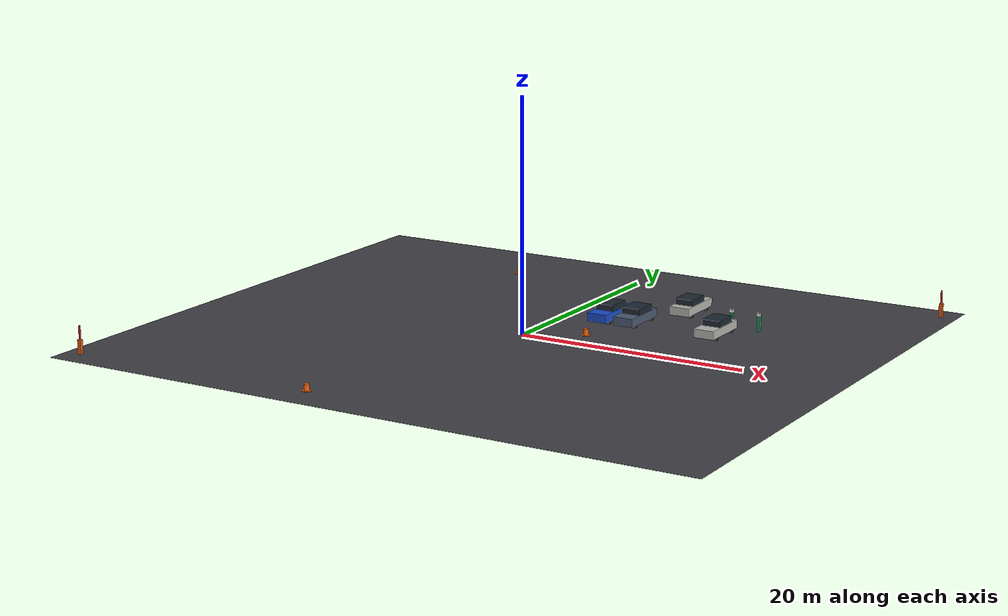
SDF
<sdf version="1.10">
 <world name="parking_lot">
  <model name="ground">
   <static>true</static>
   <link name="link">
    <collision name="c">
     <geometry><plane><normal>0 0 1</normal><size>78.0 70.1</size></plane></geometry>
     <surface><friction><ode><mu>1.0</mu><mu2>1.0</mu2></ode></friction></surface>
    </collision>
    <visual name="floor_vis">
     <pose>0.0000 0.0000 -0.0100 0 0 0.000000</pose>
     <geometry><box><size>58.0000 50.1000 0.0200</size></box></geometry>
     <material>
      <ambient>0.22 0.22 0.24 1</ambient>
      <diffuse>0.26 0.26 0.28 1</diffuse>
      <specular>0.1 0.1 0.1 1</specular>
     </material>
    </visual>
   </link>
  </model>
  <model name="gates">
   <static>true</static>
   <link name="link">
    <collision name="gpost_in_col">
     <pose>-27.6000 -23.0500 0.6000 0 0 0.000000</pose>
     <geometry><box><size>0.3000 0.3000 1.2000</size></box></geometry>
    </collision>
    <visual name="gpost_in_vis">
     <pose>-27.6000 -23.0500 0.6000 0 0 0.000000</pose>
     <geometry><box><size>0.3000 0.3000 1.2000</size></box></geometry>
     <material>
      <ambient>0.60 0.20 0.05 1</ambient>
      <diffuse>0.90 0.35 0.08 1</diffuse>
      <specular>0.1 0.1 0.1 1</specular>
     </material>
    </visual>
    <visual name="gbar_in_vis">
     <pose>-27.6000 -23.0500 1.8000 0 0 0.000000</pose>
     <geometry><box><size>0.1200 0.1200 1.1000</size></box></geometry>
     <material>
      <ambient>0.55 0.08 0.06 1</ambient>
      <diffuse>0.80 0.14 0.10 1</diffuse>
      <specular>0.1 0.1 0.1 1</specular>
     </material>
    </visual>
    <collision name="gpost_out_col">
     <pose>27.6000 23.0500 0.6000 0 0 0.000000</pose>
     <geometry><box><size>0.3000 0.3000 1.2000</size></box></geometry>
    </collision>
    <visual name="gpost_out_vis">
     <pose>27.6000 23.0500 0.6000 0 0 0.000000</pose>
     <geometry><box><size>0.3000 0.3000 1.2000</size></box></geometry>
     <material>
      <ambient>0.60 0.20 0.05 1</ambient>
      <diffuse>0.90 0.35 0.08 1</diffuse>
      <specular>0.1 0.1 0.1 1</specular>
     </material>
    </visual>
    <visual name="gbar_out_vis">
     <pose>27.6000 23.0500 1.8000 0 0 0.000000</pose>
     <geometry><box><size>0.1200 0.1200 1.1000</size></box></geometry>
     <material>
      <ambient>0.55 0.08 0.06 1</ambient>
      <diffuse>0.80 0.14 0.10 1</diffuse>
      <specular>0.1 0.1 0.1 1</specular>
     </material>
    </visual>
   </link>
  </model>
  <model name="ev_chargers">
   <static>true</static>
   <link name="link">
    <collision name="chg_D13_col">
     <pose>13.7500 11.0000 0.6500 0 0 0.000000</pose>
     <geometry><box><size>0.2800 0.2800 1.3000</size></box></geometry>
    </collision>
    <visual name="chg_D13_vis">
     <pose>13.7500 11.0000 0.6500 0 0 0.000000</pose>
     <geometry><box><size>0.2800 0.2800 1.3000</size></box></geometry>
     <material>
      <ambient>0.10 0.30 0.20 1</ambient>
      <diffuse>0.15 0.55 0.35 1</diffuse>
      <specular>0.1 0.1 0.1 1</specular>
     </material>
    </visual>
    <visual name="chgtop_D13_vis">
     <pose>13.7500 11.0000 1.4200 0 0 0.000000</pose>
     <geometry><box><size>0.3600 0.2200 0.2400</size></box></geometry>
     <material>
      <ambient>0.85 0.85 0.85 1</ambient>
      <diffuse>0.95 0.95 0.95 1</diffuse>
      <specular>0.1 0.1 0.1 1</specular>
     </material>
    </visual>
    <collision name="chg_D14_col">
     <pose>16.2500 11.0000 0.6500 0 0 0.000000</pose>
     <geometry><box><size>0.2800 0.2800 1.3000</size></box></geometry>
    </collision>
    <visual name="chg_D14_vis">
     <pose>16.2500 11.0000 0.6500 0 0 0.000000</pose>
     <geometry><box><size>0.2800 0.2800 1.3000</size></box></geometry>
     <material>
      <ambient>0.10 0.30 0.20 1</ambient>
      <diffuse>0.15 0.55 0.35 1</diffuse>
      <specular>0.1 0.1 0.1 1</specular>
     </material>
    </visual>
    <visual name="chgtop_D14_vis">
     <pose>16.2500 11.0000 1.4200 0 0 0.000000</pose>
     <geometry><box><size>0.3600 0.2200 0.2400</size></box></geometry>
     <material>
      <ambient>0.85 0.85 0.85 1</ambient>
      <diffuse>0.95 0.95 0.95 1</diffuse>
      <specular>0.1 0.1 0.1 1</specular>
     </material>
    </visual>
   </link>
  </model>
  <model name="cone_00">
   <static>true</static>
   <link name="link">
    <collision name="cone_col">
     <pose>-6.0000 -22.0500 0.2750 0 0 0</pose>
     <geometry><cylinder><radius>0.2200</radius><length>0.5500</length></cylinder></geometry>
    </collision>
    <visual name="cone_vis">
     <pose>-6.0000 -22.0500 0.2750 0 0 0</pose>
     <geometry><cylinder><radius>0.2200</radius><length>0.5500</length></cylinder></geometry>
     <material>
      <ambient>0.60 0.22 0.03 1</ambient>
      <diffuse>0.95 0.38 0.05 1</diffuse>
      <specular>0.1 0.1 0.1 1</specular>
     </material>
    </visual>
    <collision name="base_col">
     <pose>-6.0000 -22.0500 0.0200 0 0 0</pose>
     <geometry><cylinder><radius>0.3740</radius><length>0.0400</length></cylinder></geometry>
    </collision>
    <visual name="base_vis">
     <pose>-6.0000 -22.0500 0.0200 0 0 0</pose>
     <geometry><cylinder><radius>0.3740</radius><length>0.0400</length></cylinder></geometry>
     <material>
      <ambient>0.60 0.22 0.03 1</ambient>
      <diffuse>0.95 0.38 0.05 1</diffuse>
      <specular>0.1 0.1 0.1 1</specular>
     </material>
    </visual>
   </link>
  </model>
  <model name="cone_01">
   <static>true</static>
   <link name="link">
    <collision name="cone_col">
     <pose>4.5000 2.6000 0.2750 0 0 0</pose>
     <geometry><cylinder><radius>0.2200</radius><length>0.5500</length></cylinder></geometry>
    </collision>
    <visual name="cone_vis">
     <pose>4.5000 2.6000 0.2750 0 0 0</pose>
     <geometry><cylinder><radius>0.2200</radius><length>0.5500</length></cylinder></geometry>
     <material>
      <ambient>0.60 0.22 0.03 1</ambient>
      <diffuse>0.95 0.38 0.05 1</diffuse>
      <specular>0.1 0.1 0.1 1</specular>
     </material>
    </visual>
    <collision name="base_col">
     <pose>4.5000 2.6000 0.0200 0 0 0</pose>
     <geometry><cylinder><radius>0.3740</radius><length>0.0400</length></cylinder></geometry>
    </collision>
    <visual name="base_vis">
     <pose>4.5000 2.6000 0.0200 0 0 0</pose>
     <geometry><cylinder><radius>0.3740</radius><length>0.0400</length></cylinder></geometry>
     <material>
      <ambient>0.60 0.22 0.03 1</ambient>
      <diffuse>0.95 0.38 0.05 1</diffuse>
      <specular>0.1 0.1 0.1 1</specular>
     </material>
    </visual>
   </link>
  </model>
  <model name="cone_02">
   <static>true</static>
   <link name="link">
    <collision name="cone_col">
     <pose>-11.0000 17.8500 0.2750 0 0 0</pose>
     <geometry><cylinder><radius>0.2200</radius><length>0.5500</length></cylinder></geometry>
    </collision>
    <visual name="cone_vis">
     <pose>-11.0000 17.8500 0.2750 0 0 0</pose>
     <geometry><cylinder><radius>0.2200</radius><length>0.5500</length></cylinder></geometry>
     <material>
      <ambient>0.60 0.22 0.03 1</ambient>
      <diffuse>0.95 0.38 0.05 1</diffuse>
      <specular>0.1 0.1 0.1 1</specular>
     </material>
    </visual>
    <collision name="base_col">
     <pose>-11.0000 17.8500 0.0200 0 0 0</pose>
     <geometry><cylinder><radius>0.3740</radius><length>0.0400</length></cylinder></geometry>
    </collision>
    <visual name="base_vis">
     <pose>-11.0000 17.8500 0.0200 0 0 0</pose>
     <geometry><cylinder><radius>0.3740</radius><length>0.0400</length></cylinder></geometry>
     <material>
      <ambient>0.60 0.22 0.03 1</ambient>
      <diffuse>0.95 0.38 0.05 1</diffuse>
      <specular>0.1 0.1 0.1 1</specular>
     </material>
    </visual>
   </link>
  </model>
  <model name="parked_car_C09">
   <static>true</static>
   <pose>3.7500 7.9500 0 0 0 -1.570796</pose>
   <link name="link">
    <collision name="body_col">
     <pose>0.0000 0.0000 0.6300 0 0 0.000000</pose>
     <geometry><box><size>4.4000 1.8000 0.7200</size></box></geometry>
    </collision>
    <visual name="body_vis">
     <pose>0.0000 0.0000 0.6300 0 0 0.000000</pose>
     <geometry><box><size>4.4000 1.8000 0.7200</size></box></geometry>
     <material>
      <ambient>0.06 0.18 0.55 1</ambient>
      <diffuse>0.10 0.30 0.80 1</diffuse>
      <specular>0.1 0.1 0.1 1</specular>
     </material>
    </visual>
    <collision name="cabin_col">
     <pose>-0.2500 0.0000 1.2500 0 0 0.000000</pose>
     <geometry><box><size>2.2000 1.6560 0.5200</size></box></geometry>
    </collision>
    <visual name="cabin_vis">
     <pose>-0.2500 0.0000 1.2500 0 0 0.000000</pose>
     <geometry><box><size>2.2000 1.6560 0.5200</size></box></geometry>
     <material>
      <ambient>0.06 0.08 0.10 1</ambient>
      <diffuse>0.12 0.16 0.20 1</diffuse>
      <specular>0.1 0.1 0.1 1</specular>
     </material>
    </visual>
    <collision name="w_fl_col">
     <pose>1.4080 0.7560 0.3300 1.5708 0 0</pose>
     <geometry><cylinder><radius>0.3300</radius><length>0.2200</length></cylinder></geometry>
    </collision>
    <visual name="w_fl_vis">
     <pose>1.4080 0.7560 0.3300 1.5708 0 0</pose>
     <geometry><cylinder><radius>0.3300</radius><length>0.2200</length></cylinder></geometry>
     <material>
      <ambient>0.03 0.03 0.03 1</ambient>
      <diffuse>0.08 0.08 0.08 1</diffuse>
      <specular>0.1 0.1 0.1 1</specular>
     </material>
    </visual>
    <collision name="w_fr_col">
     <pose>1.4080 -0.7560 0.3300 1.5708 0 0</pose>
     <geometry><cylinder><radius>0.3300</radius><length>0.2200</length></cylinder></geometry>
    </collision>
    <visual name="w_fr_vis">
     <pose>1.4080 -0.7560 0.3300 1.5708 0 0</pose>
     <geometry><cylinder><radius>0.3300</radius><length>0.2200</length></cylinder></geometry>
     <material>
      <ambient>0.03 0.03 0.03 1</ambient>
      <diffuse>0.08 0.08 0.08 1</diffuse>
      <specular>0.1 0.1 0.1 1</specular>
     </material>
    </visual>
    <collision name="w_rl_col">
     <pose>-1.4080 0.7560 0.3300 1.5708 0 0</pose>
     <geometry><cylinder><radius>0.3300</radius><length>0.2200</length></cylinder></geometry>
    </collision>
    <visual name="w_rl_vis">
     <pose>-1.4080 0.7560 0.3300 1.5708 0 0</pose>
     <geometry><cylinder><radius>0.3300</radius><length>0.2200</length></cylinder></geometry>
     <material>
      <ambient>0.03 0.03 0.03 1</ambient>
      <diffuse>0.08 0.08 0.08 1</diffuse>
      <specular>0.1 0.1 0.1 1</specular>
     </material>
    </visual>
    <collision name="w_rr_col">
     <pose>-1.4080 -0.7560 0.3300 1.5708 0 0</pose>
     <geometry><cylinder><radius>0.3300</radius><length>0.2200</length></cylinder></geometry>
    </collision>
    <visual name="w_rr_vis">
     <pose>-1.4080 -0.7560 0.3300 1.5708 0 0</pose>
     <geometry><cylinder><radius>0.3300</radius><length>0.2200</length></cylinder></geometry>
     <material>
      <ambient>0.03 0.03 0.03 1</ambient>
      <diffuse>0.08 0.08 0.08 1</diffuse>
      <specular>0.1 0.1 0.1 1</specular>
     </material>
    </visual>
   </link>
  </model>
  <model name="parked_car_C10">
   <static>true</static>
   <pose>6.2500 7.9500 0 0 0 -1.570796</pose>
   <link name="link">
    <collision name="body_col">
     <pose>0.0000 0.0000 0.6300 0 0 0.000000</pose>
     <geometry><box><size>4.4000 1.8000 0.7200</size></box></geometry>
    </collision>
    <visual name="body_vis">
     <pose>0.0000 0.0000 0.6300 0 0 0.000000</pose>
     <geometry><box><size>4.4000 1.8000 0.7200</size></box></geometry>
     <material>
      <ambient>0.10 0.12 0.16 1</ambient>
      <diffuse>0.30 0.36 0.46 1</diffuse>
      <specular>0.1 0.1 0.1 1</specular>
     </material>
    </visual>
    <collision name="cabin_col">
     <pose>-0.2500 0.0000 1.2500 0 0 0.000000</pose>
     <geometry><box><size>2.2000 1.6560 0.5200</size></box></geometry>
    </collision>
    <visual name="cabin_vis">
     <pose>-0.2500 0.0000 1.2500 0 0 0.000000</pose>
     <geometry><box><size>2.2000 1.6560 0.5200</size></box></geometry>
     <material>
      <ambient>0.06 0.08 0.10 1</ambient>
      <diffuse>0.12 0.16 0.20 1</diffuse>
      <specular>0.1 0.1 0.1 1</specular>
     </material>
    </visual>
    <collision name="w_fl_col">
     <pose>1.4080 0.7560 0.3300 1.5708 0 0</pose>
     <geometry><cylinder><radius>0.3300</radius><length>0.2200</length></cylinder></geometry>
    </collision>
    <visual name="w_fl_vis">
     <pose>1.4080 0.7560 0.3300 1.5708 0 0</pose>
     <geometry><cylinder><radius>0.3300</radius><length>0.2200</length></cylinder></geometry>
     <material>
      <ambient>0.03 0.03 0.03 1</ambient>
      <diffuse>0.08 0.08 0.08 1</diffuse>
      <specular>0.1 0.1 0.1 1</specular>
     </material>
    </visual>
    <collision name="w_fr_col">
     <pose>1.4080 -0.7560 0.3300 1.5708 0 0</pose>
     <geometry><cylinder><radius>0.3300</radius><length>0.2200</length></cylinder></geometry>
    </collision>
    <visual name="w_fr_vis">
     <pose>1.4080 -0.7560 0.3300 1.5708 0 0</pose>
     <geometry><cylinder><radius>0.3300</radius><length>0.2200</length></cylinder></geometry>
     <material>
      <ambient>0.03 0.03 0.03 1</ambient>
      <diffuse>0.08 0.08 0.08 1</diffuse>
      <specular>0.1 0.1 0.1 1</specular>
     </material>
    </visual>
    <collision name="w_rl_col">
     <pose>-1.4080 0.7560 0.3300 1.5708 0 0</pose>
     <geometry><cylinder><radius>0.3300</radius><length>0.2200</length></cylinder></geometry>
    </collision>
    <visual name="w_rl_vis">
     <pose>-1.4080 0.7560 0.3300 1.5708 0 0</pose>
     <geometry><cylinder><radius>0.3300</radius><length>0.2200</length></cylinder></geometry>
     <material>
      <ambient>0.03 0.03 0.03 1</ambient>
      <diffuse>0.08 0.08 0.08 1</diffuse>
      <specular>0.1 0.1 0.1 1</specular>
     </material>
    </visual>
    <collision name="w_rr_col">
     <pose>-1.4080 -0.7560 0.3300 1.5708 0 0</pose>
     <geometry><cylinder><radius>0.3300</radius><length>0.2200</length></cylinder></geometry>
    </collision>
    <visual name="w_rr_vis">
     <pose>-1.4080 -0.7560 0.3300 1.5708 0 0</pose>
     <geometry><cylinder><radius>0.3300</radius><length>0.2200</length></cylinder></geometry>
     <material>
      <ambient>0.03 0.03 0.03 1</ambient>
      <diffuse>0.08 0.08 0.08 1</diffuse>
      <specular>0.1 0.1 0.1 1</specular>
     </material>
    </visual>
   </link>
  </model>
  <model name="parked_car_C13">
   <static>true</static>
   <pose>13.7500 7.9500 0 0 0 -1.570796</pose>
   <link name="link">
    <collision name="body_col">
     <pose>0.0000 0.0000 0.6300 0 0 0.000000</pose>
     <geometry><box><size>4.4000 1.8000 0.7200</size></box></geometry>
    </collision>
    <visual name="body_vis">
     <pose>0.0000 0.0000 0.6300 0 0 0.000000</pose>
     <geometry><box><size>4.4000 1.8000 0.7200</size></box></geometry>
     <material>
      <ambient>0.55 0.55 0.53 1</ambient>
      <diffuse>0.72 0.72 0.70 1</diffuse>
      <specular>0.1 0.1 0.1 1</specular>
     </material>
    </visual>
    <collision name="cabin_col">
     <pose>-0.2500 0.0000 1.2500 0 0 0.000000</pose>
     <geometry><box><size>2.2000 1.6560 0.5200</size></box></geometry>
    </collision>
    <visual name="cabin_vis">
     <pose>-0.2500 0.0000 1.2500 0 0 0.000000</pose>
     <geometry><box><size>2.2000 1.6560 0.5200</size></box></geometry>
     <material>
      <ambient>0.06 0.08 0.10 1</ambient>
      <diffuse>0.12 0.16 0.20 1</diffuse>
      <specular>0.1 0.1 0.1 1</specular>
     </material>
    </visual>
    <collision name="w_fl_col">
     <pose>1.4080 0.7560 0.3300 1.5708 0 0</pose>
     <geometry><cylinder><radius>0.3300</radius><length>0.2200</length></cylinder></geometry>
    </collision>
    <visual name="w_fl_vis">
     <pose>1.4080 0.7560 0.3300 1.5708 0 0</pose>
     <geometry><cylinder><radius>0.3300</radius><length>0.2200</length></cylinder></geometry>
     <material>
      <ambient>0.03 0.03 0.03 1</ambient>
      <diffuse>0.08 0.08 0.08 1</diffuse>
      <specular>0.1 0.1 0.1 1</specular>
     </material>
    </visual>
    <collision name="w_fr_col">
     <pose>1.4080 -0.7560 0.3300 1.5708 0 0</pose>
     <geometry><cylinder><radius>0.3300</radius><length>0.2200</length></cylinder></geometry>
    </collision>
    <visual name="w_fr_vis">
     <pose>1.4080 -0.7560 0.3300 1.5708 0 0</pose>
     <geometry><cylinder><radius>0.3300</radius><length>0.2200</length></cylinder></geometry>
     <material>
      <ambient>0.03 0.03 0.03 1</ambient>
      <diffuse>0.08 0.08 0.08 1</diffuse>
      <specular>0.1 0.1 0.1 1</specular>
     </material>
    </visual>
    <collision name="w_rl_col">
     <pose>-1.4080 0.7560 0.3300 1.5708 0 0</pose>
     <geometry><cylinder><radius>0.3300</radius><length>0.2200</length></cylinder></geometry>
    </collision>
    <visual name="w_rl_vis">
     <pose>-1.4080 0.7560 0.3300 1.5708 0 0</pose>
     <geometry><cylinder><radius>0.3300</radius><length>0.2200</length></cylinder></geometry>
     <material>
      <ambient>0.03 0.03 0.03 1</ambient>
      <diffuse>0.08 0.08 0.08 1</diffuse>
      <specular>0.1 0.1 0.1 1</specular>
     </material>
    </visual>
    <collision name="w_rr_col">
     <pose>-1.4080 -0.7560 0.3300 1.5708 0 0</pose>
     <geometry><cylinder><radius>0.3300</radius><length>0.2200</length></cylinder></geometry>
    </collision>
    <visual name="w_rr_vis">
     <pose>-1.4080 -0.7560 0.3300 1.5708 0 0</pose>
     <geometry><cylinder><radius>0.3300</radius><length>0.2200</length></cylinder></geometry>
     <material>
      <ambient>0.03 0.03 0.03 1</ambient>
      <diffuse>0.08 0.08 0.08 1</diffuse>
      <specular>0.1 0.1 0.1 1</specular>
     </material>
    </visual>
   </link>
  </model>
  <model name="parked_car_D11">
   <static>true</static>
   <pose>8.7500 13.3500 0 0 0 1.570796</pose>
   <link name="link">
    <collision name="body_col">
     <pose>0.0000 0.0000 0.6300 0 0 0.000000</pose>
     <geometry><box><size>4.4000 1.8000 0.7200</size></box></geometry>
    </collision>
    <visual name="body_vis">
     <pose>0.0000 0.0000 0.6300 0 0 0.000000</pose>
     <geometry><box><size>4.4000 1.8000 0.7200</size></box></geometry>
     <material>
      <ambient>0.55 0.55 0.53 1</ambient>
      <diffuse>0.72 0.72 0.70 1</diffuse>
      <specular>0.1 0.1 0.1 1</specular>
     </material>
    </visual>
    <collision name="cabin_col">
     <pose>-0.2500 0.0000 1.2500 0 0 0.000000</pose>
     <geometry><box><size>2.2000 1.6560 0.5200</size></box></geometry>
    </collision>
    <visual name="cabin_vis">
     <pose>-0.2500 0.0000 1.2500 0 0 0.000000</pose>
     <geometry><box><size>2.2000 1.6560 0.5200</size></box></geometry>
     <material>
      <ambient>0.06 0.08 0.10 1</ambient>
      <diffuse>0.12 0.16 0.20 1</diffuse>
      <specular>0.1 0.1 0.1 1</specular>
     </material>
    </visual>
    <collision name="w_fl_col">
     <pose>1.4080 0.7560 0.3300 1.5708 0 0</pose>
     <geometry><cylinder><radius>0.3300</radius><length>0.2200</length></cylinder></geometry>
    </collision>
    <visual name="w_fl_vis">
     <pose>1.4080 0.7560 0.3300 1.5708 0 0</pose>
     <geometry><cylinder><radius>0.3300</radius><length>0.2200</length></cylinder></geometry>
     <material>
      <ambient>0.03 0.03 0.03 1</ambient>
      <diffuse>0.08 0.08 0.08 1</diffuse>
      <specular>0.1 0.1 0.1 1</specular>
     </material>
    </visual>
    <collision name="w_fr_col">
     <pose>1.4080 -0.7560 0.3300 1.5708 0 0</pose>
     <geometry><cylinder><radius>0.3300</radius><length>0.2200</length></cylinder></geometry>
    </collision>
    <visual name="w_fr_vis">
     <pose>1.4080 -0.7560 0.3300 1.5708 0 0</pose>
     <geometry><cylinder><radius>0.3300</radius><length>0.2200</length></cylinder></geometry>
     <material>
      <ambient>0.03 0.03 0.03 1</ambient>
      <diffuse>0.08 0.08 0.08 1</diffuse>
      <specular>0.1 0.1 0.1 1</specular>
     </material>
    </visual>
    <collision name="w_rl_col">
     <pose>-1.4080 0.7560 0.3300 1.5708 0 0</pose>
     <geometry><cylinder><radius>0.3300</radius><length>0.2200</length></cylinder></geometry>
    </collision>
    <visual name="w_rl_vis">
     <pose>-1.4080 0.7560 0.3300 1.5708 0 0</pose>
     <geometry><cylinder><radius>0.3300</radius><length>0.2200</length></cylinder></geometry>
     <material>
      <ambient>0.03 0.03 0.03 1</ambient>
      <diffuse>0.08 0.08 0.08 1</diffuse>
      <specular>0.1 0.1 0.1 1</specular>
     </material>
    </visual>
    <collision name="w_rr_col">
     <pose>-1.4080 -0.7560 0.3300 1.5708 0 0</pose>
     <geometry><cylinder><radius>0.3300</radius><length>0.2200</length></cylinder></geometry>
    </collision>
    <visual name="w_rr_vis">
     <pose>-1.4080 -0.7560 0.3300 1.5708 0 0</pose>
     <geometry><cylinder><radius>0.3300</radius><length>0.2200</length></cylinder></geometry>
     <material>
      <ambient>0.03 0.03 0.03 1</ambient>
      <diffuse>0.08 0.08 0.08 1</diffuse>
      <specular>0.1 0.1 0.1 1</specular>
     </material>
    </visual>
   </link>
  </model>
 </world>
</sdf>
